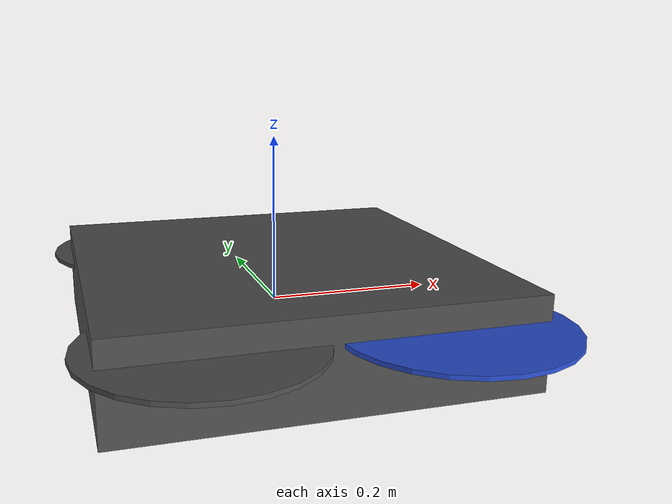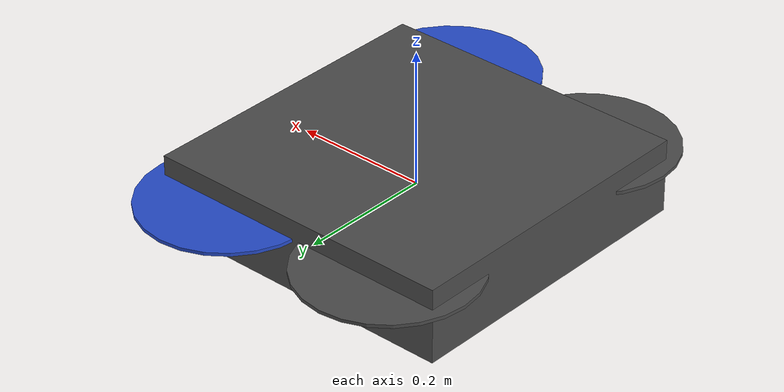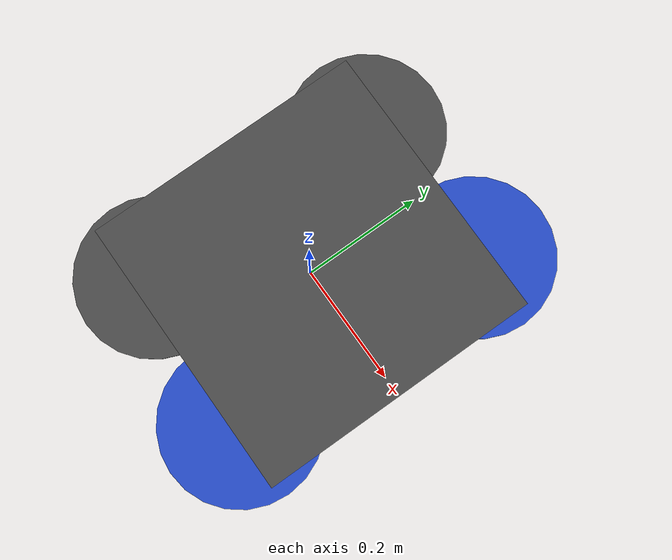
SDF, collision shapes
<?xml version="1.0" ?>
<sdf version="1.5">
  <model name='iris_sensors'>
    <include>
      <uri>model://iris</uri>
    </include>

    <include>
      <uri>model://real_sense_d435i</uri>
      <pose>0 0.11 0.02 1.57079633 1.5708 1.57079633</pose>
    </include>
    <joint name="depth_camera_joint" type="revolute">
      <parent>iris::base_link</parent>
      <child>real_sense_d435i::link</child>
      <axis>
        <xyz>0 0 1</xyz>
        <limit>
          <upper>0</upper>
          <lower>0</lower>
        </limit>
      </axis>
    </joint>

    <include>
      <uri>model://Ocam</uri>
      <pose>0 0 -0.04 0 1.57079633 0</pose>
    </include>
    <joint name="camera_joint" type="fixed">
      <parent>iris::base_link</parent>
      <child>Ocam::link</child>
      <axis>
        <xyz>0 0 1</xyz>
        <limit>
          <upper>0</upper>
          <lower>0</lower>
        </limit>
      </axis>
    </joint>

  </model>
</sdf>

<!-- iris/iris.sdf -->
<sdf version='1.6'>
  <model name='iris'>
    <link name='base_link'>
      <pose frame=''>0 0 0 0 -0 0</pose>
      <inertial>
        <pose frame=''>0 0 0 0 -0 0</pose>
        <mass>1.5</mass>
        <inertia>
          <ixx>0.029125</ixx>
          <ixy>0</ixy>
          <ixz>0</ixz>
          <iyy>0.029125</iyy>
          <iyz>0</iyz>
          <izz>0.055225</izz>
        </inertia>
      </inertial>
      <collision name='base_link_inertia_collision'>
        <pose frame=''>0 0 0 0 -0 0</pose>
        <geometry>
          <box>
            <size>0.47 0.47 0.11</size>
          </box>
        </geometry>
        <surface>
          <contact>
            <ode>
              <min_depth>0.001</min_depth>
              <max_vel>0</max_vel>
            </ode>
          </contact>
          <friction>
            <ode/>
          </friction>
        </surface>
      </collision>
      <visual name='base_link_inertia_visual'>
        <pose frame=''>0 0 0 0 -0 0</pose>
        <geometry>
          <mesh>
            <scale>1 1 1</scale>
            <uri>model://rotors_description/meshes/iris.stl</uri>
          </mesh>
        </geometry>
        <material>
          <script>
            <name>Gazebo/DarkGrey</name>
            <uri>file://media/materials/scripts/gazebo.material</uri>
          </script>
        </material>
      </visual>
      <gravity>1</gravity>
      <velocity_decay/>
    </link>
    <link name='/imu_link'>
      <pose frame=''>0 0 0 0 -0 0</pose>
      <inertial>
        <pose frame=''>0 0 0 0 -0 0</pose>
        <mass>0.015</mass>
        <inertia>
          <ixx>1e-05</ixx>
          <ixy>0</ixy>
          <ixz>0</ixz>
          <iyy>1e-05</iyy>
          <iyz>0</iyz>
          <izz>1e-05</izz>
        </inertia>
      </inertial>
    </link>
    <joint name='/imu_joint' type='revolute'>
      <child>/imu_link</child>
      <parent>base_link</parent>
      <axis>
        <xyz>1 0 0</xyz>
        <limit>
          <lower>0</lower>
          <upper>0</upper>
          <effort>0</effort>
          <velocity>0</velocity>
        </limit>
        <dynamics>
          <spring_reference>0</spring_reference>
          <spring_stiffness>0</spring_stiffness>
        </dynamics>
        <use_parent_model_frame>1</use_parent_model_frame>
      </axis>
    </joint>

    <link name='/magnet_link'>
      <pose frame=''>0 0 0 0 -0 0</pose>
      <inertial>
        <pose frame=''>0 0 0 0 -0 0</pose>
        <mass>0.1</mass>
        <inertia>
          <ixx>1e-05</ixx>
          <ixy>0</ixy>
          <ixz>0</ixz>
          <iyy>1e-05</iyy>
          <iyz>0</iyz>
          <izz>1e-05</izz>
        </inertia>
      </inertial>
    </link>
    <joint name='/magnet_joint' type='revolute'>
      <child>/magnet_link</child>
      <parent>base_link</parent>
      <axis>
        <xyz>1 0 0</xyz>
        <limit>
          <lower>0</lower>
          <upper>0</upper>
          <effort>0</effort>
          <velocity>0</velocity>
        </limit>
        <dynamics>
          <spring_reference>0</spring_reference>
          <spring_stiffness>0</spring_stiffness>
        </dynamics>
        <use_parent_model_frame>1</use_parent_model_frame>
      </axis>
    </joint>

    <link name='rotor_0'>
      <pose frame=''>0.13 -0.22 0.023 0 -0 0</pose>
      <inertial>
        <pose frame=''>0 0 0 0 -0 0</pose>
        <mass>0.005</mass>
        <inertia>
          <ixx>9.75e-07</ixx>
          <ixy>0</ixy>
          <ixz>0</ixz>
          <iyy>0.000273104</iyy>
          <iyz>0</iyz>
          <izz>0.000274004</izz>
        </inertia>
      </inertial>
      <collision name='rotor_0_collision'>
        <pose frame=''>0 0 0 0 -0 0</pose>
        <geometry>
          <cylinder>
            <length>0.005</length>
            <radius>0.128</radius>
          </cylinder>
        </geometry>
        <surface>
          <contact>
            <ode/>
          </contact>
          <friction>
            <ode/>
          </friction>
        </surface>
      </collision>
      <visual name='rotor_0_visual'>
        <pose frame=''>0 0 0 0 -0 0</pose>
        <geometry>
          <mesh>
            <scale>1 1 1</scale>
            <uri>model://rotors_description/meshes/iris_prop_ccw.dae</uri>
          </mesh>
        </geometry>
        <material>
          <script>
            <name>Gazebo/Blue</name>
            <uri>file://media/materials/scripts/gazebo.material</uri>
          </script>
        </material>
      </visual>
      <gravity>1</gravity>
      <velocity_decay/>
    </link>
    <joint name='rotor_0_joint' type='revolute'>
      <child>rotor_0</child>
      <parent>base_link</parent>
      <axis>
        <xyz>0 0 1</xyz>
        <limit>
          <lower>-1e+16</lower>
          <upper>1e+16</upper>
        </limit>
        <dynamics>
          <spring_reference>0</spring_reference>
          <spring_stiffness>0</spring_stiffness>
        </dynamics>
        <use_parent_model_frame>1</use_parent_model_frame>
      </axis>
    </joint>
    <link name='rotor_1'>
      <pose frame=''>-0.13 0.2 0.023 0 -0 0</pose>
      <inertial>
        <pose frame=''>0 0 0 0 -0 0</pose>
        <mass>0.005</mass>
        <inertia>
          <ixx>9.75e-07</ixx>
          <ixy>0</ixy>
          <ixz>0</ixz>
          <iyy>0.000273104</iyy>
          <iyz>0</iyz>
          <izz>0.000274004</izz>
        </inertia>
      </inertial>
      <collision name='rotor_1_collision'>
        <pose frame=''>0 0 0 0 -0 0</pose>
        <geometry>
          <cylinder>
            <length>0.005</length>
            <radius>0.128</radius>
          </cylinder>
        </geometry>
        <surface>
          <contact>
            <ode/>
          </contact>
          <friction>
            <ode/>
          </friction>
        </surface>
      </collision>
      <visual name='rotor_1_visual'>
        <pose frame=''>0 0 0 0 -0 0</pose>
        <geometry>
          <mesh>
            <scale>1 1 1</scale>
            <uri>model://rotors_description/meshes/iris_prop_ccw.dae</uri>
          </mesh>
        </geometry>
        <material>
          <script>
            <name>Gazebo/DarkGrey</name>
            <uri>file://media/materials/scripts/gazebo.material</uri>
          </script>
        </material>
      </visual>
      <gravity>1</gravity>
      <velocity_decay/>
    </link>
    <joint name='rotor_1_joint' type='revolute'>
      <child>rotor_1</child>
      <parent>base_link</parent>
      <axis>
        <xyz>0 0 1</xyz>
        <limit>
          <lower>-1e+16</lower>
          <upper>1e+16</upper>
        </limit>
        <dynamics>
          <spring_reference>0</spring_reference>
          <spring_stiffness>0</spring_stiffness>
        </dynamics>
        <use_parent_model_frame>1</use_parent_model_frame>
      </axis>
    </joint>
    <link name='rotor_2'>
      <pose frame=''>0.13 0.22 0.023 0 -0 0</pose>
      <inertial>
        <pose frame=''>0 0 0 0 -0 0</pose>
        <mass>0.005</mass>
        <inertia>
          <ixx>9.75e-07</ixx>
          <ixy>0</ixy>
          <ixz>0</ixz>
          <iyy>0.000273104</iyy>
          <iyz>0</iyz>
          <izz>0.000274004</izz>
        </inertia>
      </inertial>
      <collision name='rotor_2_collision'>
        <pose frame=''>0 0 0 0 -0 0</pose>
        <geometry>
          <cylinder>
            <length>0.005</length>
            <radius>0.128</radius>
          </cylinder>
        </geometry>
        <surface>
          <contact>
            <ode/>
          </contact>
          <friction>
            <ode/>
          </friction>
        </surface>
      </collision>
      <visual name='rotor_2_visual'>
        <pose frame=''>0 0 0 0 -0 0</pose>
        <geometry>
          <mesh>
            <scale>1 1 1</scale>
            <uri>model://rotors_description/meshes/iris_prop_cw.dae</uri>
          </mesh>
        </geometry>
        <material>
          <script>
            <name>Gazebo/Blue</name>
            <uri>file://media/materials/scripts/gazebo.material</uri>
          </script>
        </material>
      </visual>
      <gravity>1</gravity>
      <velocity_decay/>
    </link>
    <joint name='rotor_2_joint' type='revolute'>
      <child>rotor_2</child>
      <parent>base_link</parent>
      <axis>
        <xyz>0 0 1</xyz>
        <limit>
          <lower>-1e+16</lower>
          <upper>1e+16</upper>
        </limit>
        <dynamics>
          <spring_reference>0</spring_reference>
          <spring_stiffness>0</spring_stiffness>
        </dynamics>
        <use_parent_model_frame>1</use_parent_model_frame>
      </axis>
    </joint>
    <link name='rotor_3'>
      <pose frame=''>-0.13 -0.2 0.023 0 -0 0</pose>
      <inertial>
        <pose frame=''>0 0 0 0 -0 0</pose>
        <mass>0.005</mass>
        <inertia>
          <ixx>9.75e-07</ixx>
          <ixy>0</ixy>
          <ixz>0</ixz>
          <iyy>0.000273104</iyy>
          <iyz>0</iyz>
          <izz>0.000274004</izz>
        </inertia>
      </inertial>
      <collision name='rotor_3_collision'>
        <pose frame=''>0 0 0 0 -0 0</pose>
        <geometry>
          <cylinder>
            <length>0.005</length>
            <radius>0.128</radius>
          </cylinder>
        </geometry>
        <surface>
          <contact>
            <ode/>
          </contact>
          <friction>
            <ode/>
          </friction>
        </surface>
      </collision>
      <visual name='rotor_3_visual'>
        <pose frame=''>0 0 0 0 -0 0</pose>
        <geometry>
          <mesh>
            <scale>1 1 1</scale>
            <uri>model://rotors_description/meshes/iris_prop_cw.dae</uri>
          </mesh>
        </geometry>
        <material>
          <script>
            <name>Gazebo/DarkGrey</name>
            <uri>file://media/materials/scripts/gazebo.material</uri>
          </script>
        </material>
      </visual>
      <gravity>1</gravity>
      <velocity_decay/>
    </link>
    <joint name='rotor_3_joint' type='revolute'>
      <child>rotor_3</child>
      <parent>base_link</parent>
      <axis>
        <xyz>0 0 1</xyz>
        <limit>
          <lower>-1e+16</lower>
          <upper>1e+16</upper>
        </limit>
        <dynamics>
          <spring_reference>0</spring_reference>
          <spring_stiffness>0</spring_stiffness>
        </dynamics>
        <use_parent_model_frame>1</use_parent_model_frame>
      </axis>
    </joint>
    <plugin name='rosbag' filename='libgazebo_multirotor_base_plugin.so'>
      <robotNamespace/>
      <linkName>base_link</linkName>
      <rotorVelocitySlowdownSim>10</rotorVelocitySlowdownSim>
    </plugin>
    <plugin name='front_right_motor_model' filename='libgazebo_motor_model.so'>
      <robotNamespace/>
      <jointName>rotor_0_joint</jointName>
      <linkName>rotor_0</linkName>
      <turningDirection>ccw</turningDirection>
      <timeConstantUp>0.0125</timeConstantUp>
      <timeConstantDown>0.025</timeConstantDown>
      <maxRotVelocity>1100</maxRotVelocity>
      <motorConstant>8.54858e-06</motorConstant>
      <momentConstant>0.06</momentConstant>
      <commandSubTopic>/gazebo/command/motor_speed</commandSubTopic>
      <motorNumber>0</motorNumber>
      <rotorDragCoefficient>0.000806428</rotorDragCoefficient>
      <rollingMomentCoefficient>1e-06</rollingMomentCoefficient>
      <motorSpeedPubTopic>/motor_speed/0</motorSpeedPubTopic>
      <rotorVelocitySlowdownSim>10</rotorVelocitySlowdownSim>
    </plugin>
    <plugin name='back_left_motor_model' filename='libgazebo_motor_model.so'>
      <robotNamespace/>
      <jointName>rotor_1_joint</jointName>
      <linkName>rotor_1</linkName>
      <turningDirection>ccw</turningDirection>
      <timeConstantUp>0.0125</timeConstantUp>
      <timeConstantDown>0.025</timeConstantDown>
      <maxRotVelocity>1100</maxRotVelocity>
      <motorConstant>8.54858e-06</motorConstant>
      <momentConstant>0.06</momentConstant>
      <commandSubTopic>/gazebo/command/motor_speed</commandSubTopic>
      <motorNumber>1</motorNumber>
      <rotorDragCoefficient>0.000806428</rotorDragCoefficient>
      <rollingMomentCoefficient>1e-06</rollingMomentCoefficient>
      <motorSpeedPubTopic>/motor_speed/1</motorSpeedPubTopic>
      <rotorVelocitySlowdownSim>10</rotorVelocitySlowdownSim>
    </plugin>
    <plugin name='front_left_motor_model' filename='libgazebo_motor_model.so'>
      <robotNamespace/>
      <jointName>rotor_2_joint</jointName>
      <linkName>rotor_2</linkName>
      <turningDirection>cw</turningDirection>
      <timeConstantUp>0.0125</timeConstantUp>
      <timeConstantDown>0.025</timeConstantDown>
      <maxRotVelocity>1100</maxRotVelocity>
      <motorConstant>8.54858e-06</motorConstant>
      <momentConstant>0.06</momentConstant>
      <commandSubTopic>/gazebo/command/motor_speed</commandSubTopic>
      <motorNumber>2</motorNumber>
      <rotorDragCoefficient>0.000806428</rotorDragCoefficient>
      <rollingMomentCoefficient>1e-06</rollingMomentCoefficient>
      <motorSpeedPubTopic>/motor_speed/2</motorSpeedPubTopic>
      <rotorVelocitySlowdownSim>10</rotorVelocitySlowdownSim>
    </plugin>
    <plugin name='back_right_motor_model' filename='libgazebo_motor_model.so'>
      <robotNamespace/>
      <jointName>rotor_3_joint</jointName>
      <linkName>rotor_3</linkName>
      <turningDirection>cw</turningDirection>
      <timeConstantUp>0.0125</timeConstantUp>
      <timeConstantDown>0.025</timeConstantDown>
      <maxRotVelocity>1100</maxRotVelocity>
      <motorConstant>8.54858e-06</motorConstant>
      <momentConstant>0.06</momentConstant>
      <commandSubTopic>/gazebo/command/motor_speed</commandSubTopic>
      <motorNumber>3</motorNumber>
      <rotorDragCoefficient>0.000806428</rotorDragCoefficient>
      <rollingMomentCoefficient>1e-06</rollingMomentCoefficient>
      <motorSpeedPubTopic>/motor_speed/3</motorSpeedPubTopic>
      <rotorVelocitySlowdownSim>10</rotorVelocitySlowdownSim>
    </plugin>
    <plugin name='gps_plugin' filename='libgazebo_gps_plugin.so'>
      <robotNamespace/>
      <gpsNoise>1</gpsNoise>
    </plugin>
    <plugin name='magnetometer_plugin' filename='libgazebo_magnetometer_plugin.so'>
      <robotNamespace/>
      <pubRate>20</pubRate>
      <noiseDensity>0.0004</noiseDensity>
      <randomWalk>6.4e-06</randomWalk>
      <biasCorrelationTime>600</biasCorrelationTime>
      <magTopic>/mag</magTopic>
    </plugin>
    <plugin name='barometer_plugin' filename='libgazebo_barometer_plugin.so'>
      <robotNamespace/>
      <pubRate>10</pubRate>
      <baroTopic>/baro</baroTopic>
    </plugin>
    <plugin name='mavlink_interface' filename='libgazebo_mavlink_interface.so'>
      <robotNamespace/>
      <imuSubTopic>/imu</imuSubTopic>
      <gpsSubTopic>/gps</gpsSubTopic>
      <magSubTopic>/mag</magSubTopic>
      <baroSubTopic>/baro</baroSubTopic>
      <mavlink_addr>INADDR_ANY</mavlink_addr>
      <mavlink_udp_port>14560</mavlink_udp_port>
      <mavlink_tcp_port>4560</mavlink_tcp_port>
      <serialEnabled>0</serialEnabled>
      <serialDevice>/dev/ttyACM0</serialDevice>
      <baudRate>921600</baudRate>
      <qgc_addr>INADDR_ANY</qgc_addr>
      <qgc_udp_port>14550</qgc_udp_port>
      <sdk_addr>INADDR_ANY</sdk_addr>
      <sdk_udp_port>14540</sdk_udp_port>
      <hil_mode>0</hil_mode>
      <hil_state_level>0</hil_state_level>
      <vehicle_is_tailsitter>0</vehicle_is_tailsitter>
      <send_vision_estimation>1</send_vision_estimation>
      <send_odometry>0</send_odometry>
      <enable_lockstep>1</enable_lockstep>
      <use_tcp>1</use_tcp>
      <motorSpeedCommandPubTopic>/gazebo/command/motor_speed</motorSpeedCommandPubTopic>
      <control_channels>
        <channel name='rotor1'>
          <input_index>0</input_index>
          <input_offset>0</input_offset>
          <input_scaling>1000</input_scaling>
          <zero_position_disarmed>0</zero_position_disarmed>
          <zero_position_armed>100</zero_position_armed>
          <joint_control_type>velocity</joint_control_type>
        </channel>
        <channel name='rotor2'>
          <input_index>1</input_index>
          <input_offset>0</input_offset>
          <input_scaling>1000</input_scaling>
          <zero_position_disarmed>0</zero_position_disarmed>
          <zero_position_armed>100</zero_position_armed>
          <joint_control_type>velocity</joint_control_type>
        </channel>
        <channel name='rotor3'>
          <input_index>2</input_index>
          <input_offset>0</input_offset>
          <input_scaling>1000</input_scaling>
          <zero_position_disarmed>0</zero_position_disarmed>
          <zero_position_armed>100</zero_position_armed>
          <joint_control_type>velocity</joint_control_type>
        </channel>
        <channel name='rotor4'>
          <input_index>3</input_index>
          <input_offset>0</input_offset>
          <input_scaling>1000</input_scaling>
          <zero_position_disarmed>0</zero_position_disarmed>
          <zero_position_armed>100</zero_position_armed>
          <joint_control_type>velocity</joint_control_type>
        </channel>
        <channel name='rotor5'>
          <input_index>4</input_index>
          <input_offset>1</input_offset>
          <input_scaling>324.6</input_scaling>
          <zero_position_disarmed>0</zero_position_disarmed>
          <zero_position_armed>0</zero_position_armed>
          <joint_control_type>velocity</joint_control_type>
          <joint_control_pid>
            <p>0.1</p>
            <i>0</i>
            <d>0</d>
            <iMax>0.0</iMax>
            <iMin>0.0</iMin>
            <cmdMax>2</cmdMax>
            <cmdMin>-2</cmdMin>
          </joint_control_pid>
          <joint_name>zephyr_delta_wing::propeller_joint</joint_name>
        </channel>
        <channel name='rotor6'>
          <input_index>5</input_index>
          <input_offset>0</input_offset>
          <input_scaling>0.524</input_scaling>
          <zero_position_disarmed>0</zero_position_disarmed>
          <zero_position_armed>0</zero_position_armed>
          <joint_control_type>position</joint_control_type>
          <joint_name>zephyr_delta_wing::flap_left_joint</joint_name>
          <joint_control_pid>
            <p>10.0</p>
            <i>0</i>
            <d>0</d>
            <iMax>0</iMax>
            <iMin>0</iMin>
            <cmdMax>20</cmdMax>
            <cmdMin>-20</cmdMin>
          </joint_control_pid>
        </channel>
        <channel name='rotor7'>
          <input_index>6</input_index>
          <input_offset>0</input_offset>
          <input_scaling>0.524</input_scaling>
          <zero_position_disarmed>0</zero_position_disarmed>
          <zero_position_armed>0</zero_position_armed>
          <joint_control_type>position</joint_control_type>
          <joint_name>zephyr_delta_wing::flap_right_joint</joint_name>
          <joint_control_pid>
            <p>10.0</p>
            <i>0</i>
            <d>0</d>
            <iMax>0</iMax>
            <iMin>0</iMin>
            <cmdMax>20</cmdMax>
            <cmdMin>-20</cmdMin>
          </joint_control_pid>
        </channel>
        <channel name='rotor8'>
          <input_index>7</input_index>
          <input_offset>0</input_offset>
          <input_scaling>0.524</input_scaling>
          <zero_position_disarmed>0</zero_position_disarmed>
          <zero_position_armed>0</zero_position_armed>
          <joint_control_type>position</joint_control_type>
        </channel>
      </control_channels>
    </plugin>
    <static>0</static>
    <plugin name='rotors_gazebo_imu_plugin' filename='libgazebo_imu_plugin.so'>
      <robotNamespace/>
      <linkName>/imu_link</linkName>
      <imuTopic>/imu</imuTopic>
      <gyroscopeNoiseDensity>0.00018665</gyroscopeNoiseDensity>
      <gyroscopeRandomWalk>3.8785e-05</gyroscopeRandomWalk>
      <gyroscopeBiasCorrelationTime>1000.0</gyroscopeBiasCorrelationTime>
      <gyroscopeTurnOnBiasSigma>0.0087</gyroscopeTurnOnBiasSigma>
      <accelerometerNoiseDensity>0.00186</accelerometerNoiseDensity>
      <accelerometerRandomWalk>0.006</accelerometerRandomWalk>
      <accelerometerBiasCorrelationTime>300.0</accelerometerBiasCorrelationTime>
      <accelerometerTurnOnBiasSigma>0.196</accelerometerTurnOnBiasSigma>
    </plugin>

    <plugin name="dipole_magnet" filename="libstorm_gazebo_dipole_magnet.so">
      <bodyName>/magnet_link</bodyName>
      <xyzOffset>0 0 0.3</xyzOffset>
      <rpyOffset>0 0 1.5707962368</rpyOffset>
      <xyzRange>0.3 0.3 0.5</xyzRange>
      <xyzVelLimit>10 10 5</xyzVelLimit>
      <debug>false</debug>
      <!-- Set to false if not using ROS -->
      <controllable>true</controllable> <!-- electro-magnet -->
      <topicNs>magnet_weebee</topicNs>
    </plugin>

  </model>
</sdf>

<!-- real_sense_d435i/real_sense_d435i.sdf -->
<sdf version="1.5">
  <model name="real_sense_d435i">
    <pose>0 0 0.035 0 0 0</pose>
    <link name="link">
      <inertial>
        <pose>0.01 0.025 0.025 0 0 0</pose>
        <mass>0.001</mass>
        <inertia>
          <ixx>1.0e-8</ixx>
          <ixy>0</ixy>
          <ixz>0</ixz>
          <iyy>1.0e-8</iyy>
          <iyz>0</iyz>
          <izz>1.0e-8</izz>
        </inertia>
      </inertial>

      <collision name="collision">
        <pose>0 0 0.0 0 0.0 0</pose>
        <geometry>
          <box>
            <size>0.01 0.01 0.01</size>
          </box>
        </geometry>
      </collision>

      <visual name="visual">
        <pose>0 0 0 0 0 0</pose>
        <geometry>
          <mesh>
            <uri>model://realsense_camera/meshes/realsense.dae</uri>
          </mesh>
        </geometry>
      </visual>

      <sensor name="depth_camera" type="depth">
        <update_rate>30</update_rate>
        <camera>
          <horizontal_fov>1.518436</horizontal_fov>
          <image>
            <format>R8G8B8</format>
            <width>640</width>
            <height>480</height>
          </image>
          <clip>
            <near>0.1</near>
            <far>10</far>
          </clip>
        </camera>
        <plugin filename="libgazebo_ros_openni_kinect.so" name="camera_controller">
          <cameraName>camera</cameraName>
          <alwaysOn>true</alwaysOn>
          <updateRate>30</updateRate>
          <pointCloudCutoff>0.2</pointCloudCutoff>
          <pointCloudCutoffMax>20</pointCloudCutoffMax>
          <imageTopicName>color/image_raw</imageTopicName>
          <cameraInfoTopicName>color/camera_info</cameraInfoTopicName>
          <depthImageTopicName>aligned_depth_to_color/image_raw_gazebo</depthImageTopicName>
          <depthImageCameraInfoTopicName>aligned_depth_to_color/camera_info</depthImageCameraInfoTopicName>
          <pointCloudTopicName>aligned_depth_to_color/points</pointCloudTopicName>
          <frameName>camera_link</frameName>
          <distortion_k1>0.0</distortion_k1>
          <distortion_k2>0.0</distortion_k2>
          <distortion_k3>0.0</distortion_k3>
          <distortion_t1>0.0</distortion_t1>
          <distortion_t2>0.0</distortion_t2>
        </plugin>
      </sensor>
    </link>
  </model>
</sdf>

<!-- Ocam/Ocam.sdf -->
<sdf version="1.5">
  <model name="Ocam">
    <link name='link'>
      <inertial>
        <pose>0 0 0.0 0 0 0</pose>
        <mass>0.001</mass>
        <inertia>
          <ixx>1.0e-8</ixx>
          <ixy>0</ixy>
          <ixz>0</ixz>
          <iyy>1.0e-8</iyy>
          <iyz>0</iyz>
          <izz>1.0e-8</izz>
        </inertia>
      </inertial>

      <collision name="collision">
        <pose>0 0 0.0 0 0.0 0</pose>
        <geometry>
          <box>
            <size>0.02 0.024 0.02</size>
          </box>
        </geometry>
      </collision>

      <visual name='visual'>
        <geometry>
          <box>
            <size>0.02 0.024 0.02</size>
          </box>
        </geometry>
        <material>
          <script>
            <name>Gazebo/DarkGrey</name>
            <uri>file://media/materials/scripts/gazebo.material</uri>
          </script>
        </material>
        <pose>0 0 0.0 0 0.0 0</pose>
        <cast_shadows>1</cast_shadows>
        <transparency>0</transparency>
      </visual>
      <self_collide>0</self_collide>
      <kinematic>0</kinematic>
      <sensor name='camera' type='wideanglecamera'>
        <update_rate>30</update_rate>
        <camera name='__default__'>
		      <horizontal_fov>1.619666</horizontal_fov>
          <image>
            <width>1920</width>
            <height>1080</height>
          </image>
          <clip>
            <near>0.01</near>
            <far>100</far>
          </clip>
          <lens>
            <env_texture_size>512</env_texture_size>
          </lens>
        </camera>
        <plugin name='camera_controller' filename='libgazebo_ros_camera.so'>
          <cameraName>camera</cameraName>
          <imageTopicName>image_rect_color</imageTopicName>
          <cameraInfoTopicName>rgb/camera_info</cameraInfoTopicName>
          <frameName>camera::link</frameName>
        </plugin>
      </sensor>
    </link>
  </model>
</sdf>
